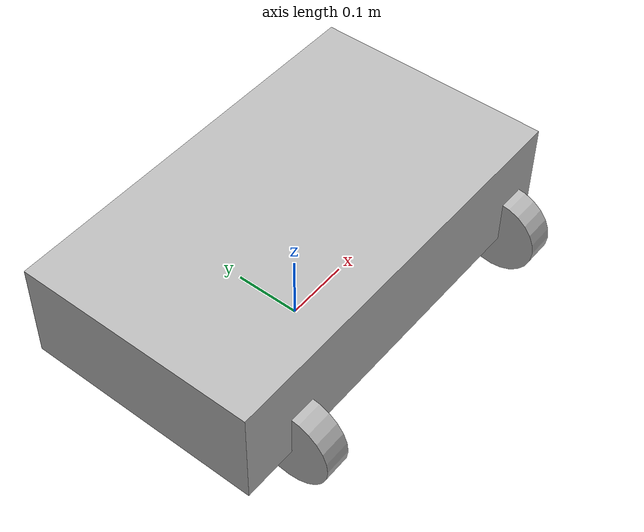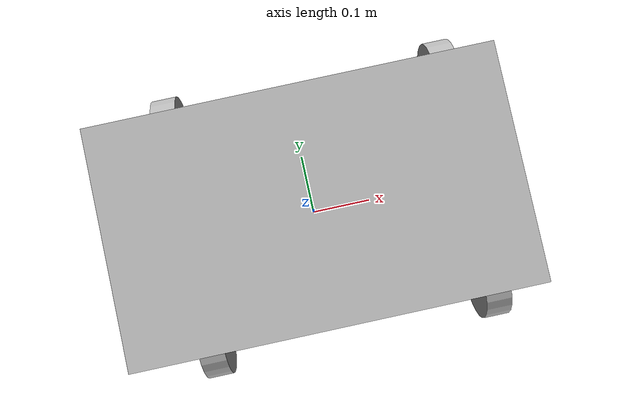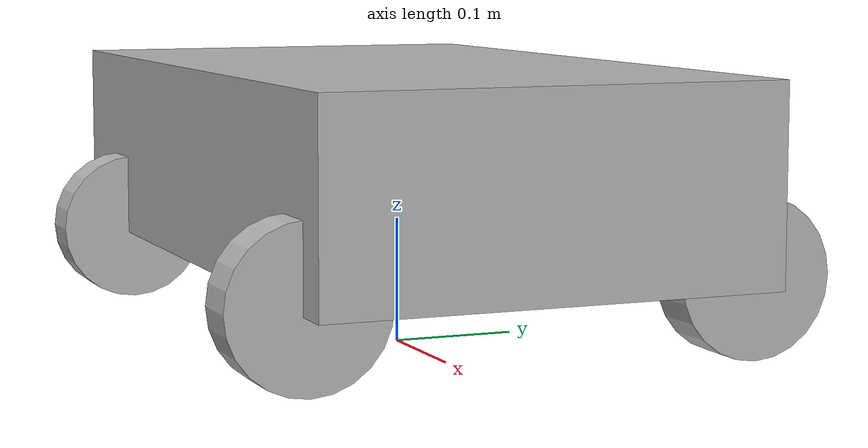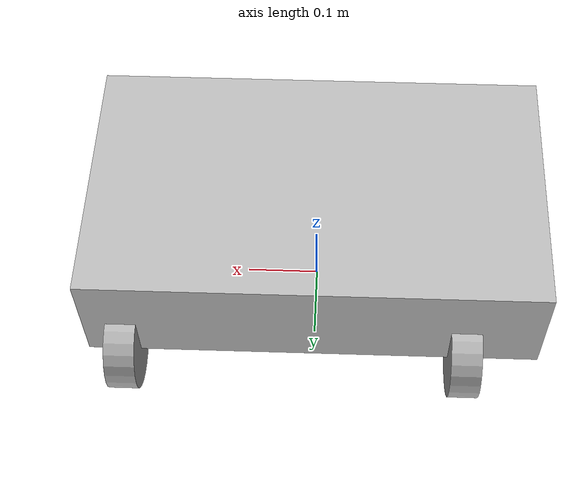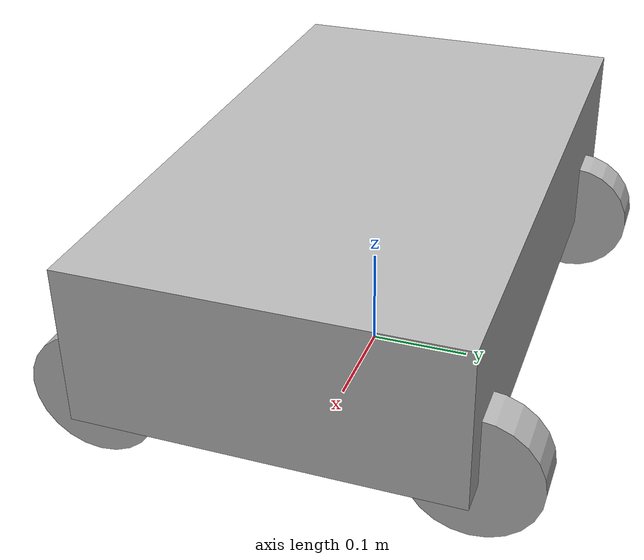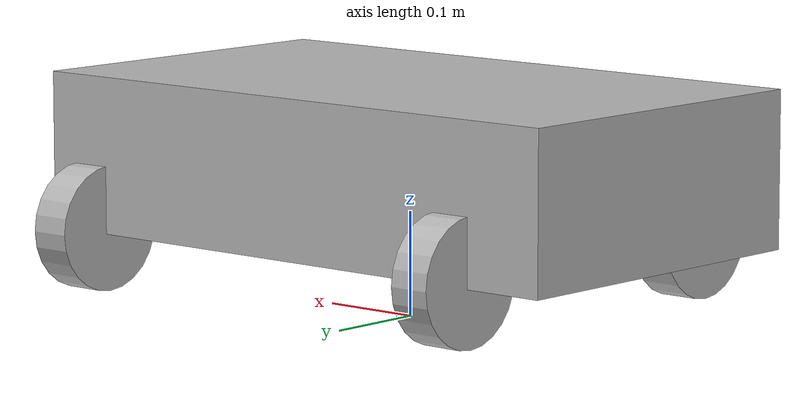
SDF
<?xml version="1.0" ?>
<sdf version="1.6">
  <model name="ackermann_car">
    <static>false</static>

    <!-- Base / chassis         -->
    <link name="base_link">
      <pose>0 0 0.15 0 0 0</pose>

      <inertial>
        <mass>5.0</mass>
        <inertia>
          <ixx>0.2</ixx><iyy>0.2</iyy><izz>0.2</izz>
          <ixy>0</ixy><ixz>0</ixz><iyz>0</iyz>
        </inertia>
      </inertial>

      <collision name="base_collision">
        <geometry><box><size>0.6 0.35 0.15</size></box></geometry>
      </collision>

      <visual name="base_visual">
        <geometry><box><size>0.6 0.35 0.15</size></box></geometry>
      </visual>
    </link>

    <!-- Parameters (geometry) -->
    <!-- wheelBase: distance between front and rear axles -->
    <!-- trackWidth: distance between left and right wheels -->
    <!-- wheelRadius: wheel radius -->
    <!-- wheelWidth: wheel thickness -->
    <!-- positions below match these roughly -->

    <!-- Rear wheels (drive)    -->
    <link name="wheel_rl">
      <pose>-0.2  0.17 0.08 0 1.5708 0</pose>
      <collision name="collision">
        <geometry><cylinder><radius>0.06</radius><length>0.04</length></cylinder></geometry>
        <surface>
          <friction><ode><mu>1.0</mu><mu2>1.0</mu2></ode></friction>
        </surface>
      </collision>
      <visual name="visual">
        <geometry><cylinder><radius>0.06</radius><length>0.04</length></cylinder></geometry>
      </visual>
    </link>

    <link name="wheel_rr">
      <pose>-0.2 -0.17 0.08 0 1.5708 0</pose>
      <collision name="collision">
        <geometry><cylinder><radius>0.06</radius><length>0.04</length></cylinder></geometry>
        <surface>
          <friction><ode><mu>1.0</mu><mu2>1.0</mu2></ode></friction>
        </surface>
      </collision>
      <visual name="visual">
        <geometry><cylinder><radius>0.06</radius><length>0.04</length></cylinder></geometry>
      </visual>
    </link>

    <!-- Front steering knuckles -->
    <link name="steer_fl">
      <pose>0.25  0.17 0.08 0 0 0</pose>
      <inertial><mass>0.1</mass></inertial>
      <visual name="visual">
        <geometry><box><size>0.02 0.02 0.02</size></box></geometry>
      </visual>
    </link>

    <link name="steer_fr">
      <pose>0.25 -0.17 0.08 0 0 0</pose>
      <inertial><mass>0.1</mass></inertial>
      <visual name="visual">
        <geometry><box><size>0.02 0.02 0.02</size></box></geometry>
      </visual>
    </link>

    <!-- Front wheels (spin) -->
    <link name="wheel_fl">
      <pose>0.25  0.17 0.08 0 1.5708 0</pose>
      <collision name="collision">
        <geometry><cylinder><radius>0.06</radius><length>0.04</length></cylinder></geometry>
        <surface>
          <friction><ode><mu>1.0</mu><mu2>1.0</mu2></ode></friction>
        </surface>
      </collision>
      <visual name="visual">
        <geometry><cylinder><radius>0.06</radius><length>0.04</length></cylinder></geometry>
      </visual>
    </link>

    <link name="wheel_fr">
      <pose>0.25 -0.17 0.08 0 1.5708 0</pose>
      <collision name="collision">
        <geometry><cylinder><radius>0.06</radius><length>0.04</length></cylinder></geometry>
        <surface>
          <friction><ode><mu>1.0</mu><mu2>1.0</mu2></ode></friction>
        </surface>
      </collision>
      <visual name="visual">
        <geometry><cylinder><radius>0.06</radius><length>0.04</length></cylinder></geometry>
      </visual>
    </link>

    <!-- Joints                 -->

    <!-- Rear wheel spin joints -->
    <joint name="joint_rl_wheel" type="revolute">
      <parent>base_link</parent>
      <child>wheel_rl</child>
      <axis>
        <xyz>0 1 0</xyz>
        <dynamics><damping>0.5</damping><friction>0.2</friction></dynamics>
      </axis>
    </joint>

    <joint name="joint_rr_wheel" type="revolute">
      <parent>base_link</parent>
      <child>wheel_rr</child>
      <axis>
        <xyz>0 1 0</xyz>
        <dynamics><damping>0.5</damping><friction>0.2</friction></dynamics>
      </axis>
    </joint>

    <!-- Front steering joints (turn about Z) -->
    <joint name="joint_fl_steer" type="revolute">
      <parent>base_link</parent>
      <child>steer_fl</child>
      <axis>
        <xyz>0 0 1</xyz>
        <limit>
          <lower>-0.6</lower>
          <upper>0.6</upper>
        </limit>
        <dynamics><damping>0.8</damping><friction>0.2</friction></dynamics>
      </axis>
    </joint>

    <joint name="joint_fr_steer" type="revolute">
      <parent>base_link</parent>
      <child>steer_fr</child>
      <axis>
        <xyz>0 0 1</xyz>
        <limit>
          <lower>-0.6</lower>
          <upper>0.6</upper>
        </limit>
        <dynamics><damping>0.8</damping><friction>0.2</friction></dynamics>
      </axis>
    </joint>

    <!-- Front wheel spin joints (spin about Y) -->
    <joint name="joint_fl_wheel" type="revolute">
      <parent>steer_fl</parent>
      <child>wheel_fl</child>
      <axis>
        <xyz>0 1 0</xyz>
        <dynamics><damping>0.5</damping><friction>0.2</friction></dynamics>
      </axis>
    </joint>

    <joint name="joint_fr_wheel" type="revolute">
      <parent>steer_fr</parent>
      <child>wheel_fr</child>
      <axis>
        <xyz>0 1 0</xyz>
        <dynamics><damping>0.5</damping><friction>0.2</friction></dynamics>
      </axis>
    </joint>

    <!-- Ackermann drive plugin -->
    <plugin name="ackermann_drive" filename="libgazebo_ros_ackermann_drive.so">
      <robotNamespace>/</robotNamespace>

      <!-- Steering joints -->
      <leftFrontSteeringJoint>joint_fl_steer</leftFrontSteeringJoint>
      <rightFrontSteeringJoint>joint_fr_steer</rightFrontSteeringJoint>

      <!-- Drive wheel joints -->
      <leftRearWheelJoint>joint_rl_wheel</leftRearWheelJoint>
      <rightRearWheelJoint>joint_rr_wheel</rightRearWheelJoint>

      <!-- Geometry -->
      <wheelBase>0.45</wheelBase>
      <wheelSeparation>0.34</wheelSeparation>
      <wheelDiameter>0.12</wheelDiameter>

      <!-- Limits -->
      <steeringLimit>0.6</steeringLimit>

      <!-- ROS topics/frames -->
      <commandTopic>/cmd_vel</commandTopic>
      <odometryTopic>/odom</odometryTopic>
      <robotBaseFrame>base_link</robotBaseFrame>

      <updateRate>50</updateRate>
    </plugin>

  </model>
</sdf>
